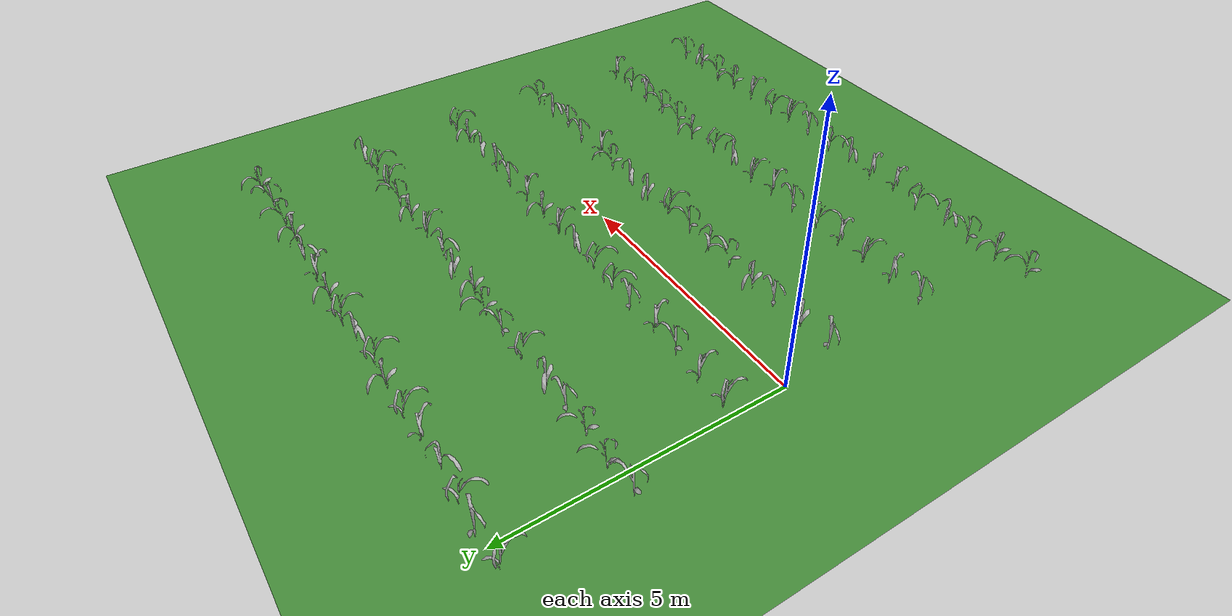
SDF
<sdf version="1.5">
 <world name="custom_maize_farm">
  <include><uri>model://sun</uri></include>
  <model name="ground_plane">
   <static>true</static>
   <link name="link">
    <collision name="collision">
     <geometry><plane><normal>0 0 1</normal><size>100 100</size></plane></geometry>
     <surface><friction><ode><mu>100</mu><mu2>50</mu2></ode></friction></surface>
    </collision>
    <visual name="visual">
     <cast_shadows>false</cast_shadows>
     <geometry><plane><normal>0 0 1</normal><size>100 100</size></plane></geometry>
     <material>
      <script><uri>file://media/materials/scripts/gazebo.material</uri><name>Gazebo/Grass</name></script>
     </material>
    </visual>
   </link>
  </model>
  <include>
   <uri>model://maize_01</uri>
   <name>plant_0_16</name>
   <pose>-0.3807210329979868 -5.040468129049532 0 0 0 1.6050220332890328</pose>
   <static>true</static>
  </include>
  <include>
   <uri>model://maize_01</uri>
   <name>plant_0_17</name>
   <pose>0.22863720472774218 -5.002466565349011 0 0 0 2.002816211383308</pose>
   <static>true</static>
  </include>
  <include>
   <uri>model://maize_01</uri>
   <name>plant_0_18</name>
   <pose>0.8112965860273498 -4.969269623209444 0 0 0 0.9914129743817501</pose>
   <static>true</static>
  </include>
  <include>
   <uri>model://maize_01</uri>
   <name>plant_0_19</name>
   <pose>1.379453956540805 -5.026117816620786 0 0 0 3.451525226140519</pose>
   <static>true</static>
  </include>
  <include>
   <uri>model://maize_01</uri>
   <name>plant_0_20</name>
   <pose>2.012544888877948 -4.96016036159044 0 0 0 4.134638987705728</pose>
   <static>true</static>
  </include>
  <include>
   <uri>model://maize_01</uri>
   <name>plant_0_21</name>
   <pose>2.6311144696377466 -5.024000251760731 0 0 0 5.688588989457242</pose>
   <static>true</static>
  </include>
  <include>
   <uri>model://maize_01</uri>
   <name>plant_0_22</name>
   <pose>3.2062454139691132 -4.985270707361579 0 0 0 5.793933955759263</pose>
   <static>true</static>
  </include>
  <include>
   <uri>model://maize_01</uri>
   <name>plant_0_23</name>
   <pose>3.8278677682271653 -5.03200568809481 0 0 0 3.4247969709899775</pose>
   <static>true</static>
  </include>
  <include>
   <uri>model://maize_01</uri>
   <name>plant_0_24</name>
   <pose>4.360560601441088 -4.990324181086675 0 0 0 4.203772585014435</pose>
   <static>true</static>
  </include>
  <include>
   <uri>model://maize_01</uri>
   <name>plant_0_25</name>
   <pose>4.993777719618213 -5.015093227966888 0 0 0 0.36426645511223094</pose>
   <static>true</static>
  </include>
  <include>
   <uri>model://maize_01</uri>
   <name>plant_0_26</name>
   <pose>5.625098461924278 -5.0457573226895205 0 0 0 5.341821495588718</pose>
   <static>true</static>
  </include>
  <include>
   <uri>model://maize_01</uri>
   <name>plant_0_27</name>
   <pose>6.1509474814185605 -5.015772490096928 0 0 0 4.613874963073128</pose>
   <static>true</static>
  </include>
  <include>
   <uri>model://maize_01</uri>
   <name>plant_0_28</name>
   <pose>6.831984153203716 -5.0244673515223495 0 0 0 5.544730430496938</pose>
   <static>true</static>
  </include>
  <include>
   <uri>model://maize_01</uri>
   <name>plant_0_29</name>
   <pose>7.426825482273021 -5.003801962184658 0 0 0 2.1591175057442924</pose>
   <static>true</static>
  </include>
  <include>
   <uri>model://maize_01</uri>
   <name>plant_0_30</name>
   <pose>8.025533983371579 -5.002219624890983 0 0 0 1.7721690967412767</pose>
   <static>true</static>
  </include>
  <include>
   <uri>model://maize_01</uri>
   <name>plant_0_31</name>
   <pose>8.615340285997116 -5.018513672031454 0 0 0 2.946608232768496</pose>
   <static>true</static>
  </include>
  <include>
   <uri>model://maize_01</uri>
   <name>plant_0_32</name>
   <pose>9.153496499272617 -4.957853396510059 0 0 0 1.093533885097643</pose>
   <static>true</static>
  </include>
  <include>
   <uri>model://maize_01</uri>
   <name>plant_1_17</name>
   <pose>0.15195774970885198 -3.0190896819397075 0 0 0 0.33163816256491185</pose>
   <static>true</static>
  </include>
  <include>
   <uri>model://maize_01</uri>
   <name>plant_1_18</name>
   <pose>0.7985026003931133 -3.0159972860998496 0 0 0 5.8239935801733225</pose>
   <static>true</static>
  </include>
  <include>
   <uri>model://maize_01</uri>
   <name>plant_1_19</name>
   <pose>1.4140449431861482 -3.012800346518933 0 0 0 5.221110872994056</pose>
   <static>true</static>
  </include>
  <include>
   <uri>model://maize_01</uri>
   <name>plant_1_20</name>
   <pose>2.015800541086362 -3.003036926029537 0 0 0 5.729273158285351</pose>
   <static>true</static>
  </include>
  <include>
   <uri>model://maize_01</uri>
   <name>plant_1_21</name>
   <pose>2.598098904706131 -3.031794616126838 0 0 0 4.596599625698544</pose>
   <static>true</static>
  </include>
  <include>
   <uri>model://maize_01</uri>
   <name>plant_1_22</name>
   <pose>3.2195940615092074 -3.004338214394407 0 0 0 0.6216855896790175</pose>
   <static>true</static>
  </include>
  <include>
   <uri>model://maize_01</uri>
   <name>plant_1_23</name>
   <pose>3.846727308220053 -3.036226002201447 0 0 0 5.67973792274115</pose>
   <static>true</static>
  </include>
  <include>
   <uri>model://maize_01</uri>
   <name>plant_1_24</name>
   <pose>4.365907176793807 -2.9702183745427555 0 0 0 5.424983799610597</pose>
   <static>true</static>
  </include>
  <include>
   <uri>model://maize_01</uri>
   <name>plant_1_25</name>
   <pose>5.038875247724795 -3.0254791573867634 0 0 0 3.4281754690334316</pose>
   <static>true</static>
  </include>
  <include>
   <uri>model://maize_01</uri>
   <name>plant_1_26</name>
   <pose>5.601747424871233 -3.0208780835070064 0 0 0 4.75074890416351</pose>
   <static>true</static>
  </include>
  <include>
   <uri>model://maize_01</uri>
   <name>plant_1_27</name>
   <pose>6.247144251126261 -2.950004272027432 0 0 0 2.483801223426759</pose>
   <static>true</static>
  </include>
  <include>
   <uri>model://maize_01</uri>
   <name>plant_1_28</name>
   <pose>6.847806179917104 -3.0252819450289774 0 0 0 1.4884859577472884</pose>
   <static>true</static>
  </include>
  <include>
   <uri>model://maize_01</uri>
   <name>plant_1_29</name>
   <pose>7.421969155205991 -3.0321432132261807 0 0 0 1.353808586396541</pose>
   <static>true</static>
  </include>
  <include>
   <uri>model://maize_01</uri>
   <name>plant_1_30</name>
   <pose>7.9802695828701085 -3.0057973710442973 0 0 0 0.42230622421968106</pose>
   <static>true</static>
  </include>
  <include>
   <uri>model://maize_01</uri>
   <name>plant_1_31</name>
   <pose>8.597199050189552 -3.0326432226909033 0 0 0 4.542344137125889</pose>
   <static>true</static>
  </include>
  <include>
   <uri>model://maize_01</uri>
   <name>plant_1_32</name>
   <pose>9.240459124989268 -3.034860755985316 0 0 0 6.00260073772567</pose>
   <static>true</static>
  </include>
  <include>
   <uri>model://maize_01</uri>
   <name>plant_2_17</name>
   <pose>0.1849664510684475 -1.031178929963481 0 0 0 0.053942472959140245</pose>
   <static>true</static>
  </include>
  <include>
   <uri>model://maize_01</uri>
   <name>plant_2_18</name>
   <pose>0.8149893729061888 -1.0115151665532012 0 0 0 2.9573039768655978</pose>
   <static>true</static>
  </include>
  <include>
   <uri>model://maize_01</uri>
   <name>plant_2_19</name>
   <pose>1.3983443964206697 -0.957956444615778 0 0 0 0.48917570818708284</pose>
   <static>true</static>
  </include>
  <include>
   <uri>model://maize_01</uri>
   <name>plant_2_20</name>
   <pose>1.964523307329796 -0.9755689853922515 0 0 0 2.791822471217703</pose>
   <static>true</static>
  </include>
  <include>
   <uri>model://maize_01</uri>
   <name>plant_2_21</name>
   <pose>2.6367048157061204 -1.0317859771306983 0 0 0 1.700649260944747</pose>
   <static>true</static>
  </include>
  <include>
   <uri>model://maize_01</uri>
   <name>plant_2_22</name>
   <pose>3.153872454438152 -0.9818059803973902 0 0 0 4.0769502614437405</pose>
   <static>true</static>
  </include>
  <include>
   <uri>model://maize_01</uri>
   <name>plant_2_23</name>
   <pose>3.7716978465146553 -1.0344922221572097 0 0 0 1.2584739543456205</pose>
   <static>true</static>
  </include>
  <include>
   <uri>model://maize_01</uri>
   <name>plant_2_24</name>
   <pose>4.426571653942076 -1.034749557837699 0 0 0 5.210750569071346</pose>
   <static>true</static>
  </include>
  <include>
   <uri>model://maize_01</uri>
   <name>plant_2_25</name>
   <pose>5.009452732221775 -0.9678628610286778 0 0 0 3.0864938967561044</pose>
   <static>true</static>
  </include>
  <include>
   <uri>model://maize_01</uri>
   <name>plant_2_26</name>
   <pose>5.590928371139384 -0.9503959918165125 0 0 0 3.466531970851903</pose>
   <static>true</static>
  </include>
  <include>
   <uri>model://maize_01</uri>
   <name>plant_2_27</name>
   <pose>6.232909715107289 -0.9740446980126671 0 0 0 2.0740715283654376</pose>
   <static>true</static>
  </include>
  <include>
   <uri>model://maize_01</uri>
   <name>plant_2_28</name>
   <pose>6.7594770398476705 -1.0340767600278484 0 0 0 5.924876000782191</pose>
   <static>true</static>
  </include>
  <include>
   <uri>model://maize_01</uri>
   <name>plant_2_29</name>
   <pose>7.355784798895397 -0.9545927583462469 0 0 0 0.8227892722332637</pose>
   <static>true</static>
  </include>
  <include>
   <uri>model://maize_01</uri>
   <name>plant_2_30</name>
   <pose>7.984049591277876 -1.0237455963599882 0 0 0 0.752594645395938</pose>
   <static>true</static>
  </include>
  <include>
   <uri>model://maize_01</uri>
   <name>plant_2_31</name>
   <pose>8.58338125164561 -0.9808965910568755 0 0 0 3.9214347064395487</pose>
   <static>true</static>
  </include>
  <include>
   <uri>model://maize_01</uri>
   <name>plant_2_32</name>
   <pose>9.244532902688187 -1.0231596456836451 0 0 0 1.9704814674195985</pose>
   <static>true</static>
  </include>
  <include>
   <uri>model://maize_01</uri>
   <name>plant_3_17</name>
   <pose>0.1807070942993483 1.0394250407400305 0 0 0 5.437907389112769</pose>
   <static>true</static>
  </include>
  <include>
   <uri>model://maize_01</uri>
   <name>plant_3_18</name>
   <pose>0.7799661124901774 1.049568299713038 0 0 0 5.678081924102522</pose>
   <static>true</static>
  </include>
  <include>
   <uri>model://maize_01</uri>
   <name>plant_3_19</name>
   <pose>1.4334839253225058 0.9807348067746028 0 0 0 0.9756302443250231</pose>
   <static>true</static>
  </include>
  <include>
   <uri>model://maize_01</uri>
   <name>plant_3_20</name>
   <pose>2.02031125206823 0.98046166279554 0 0 0 5.925526190970912</pose>
   <static>true</static>
  </include>
  <include>
   <uri>model://maize_01</uri>
   <name>plant_3_21</name>
   <pose>2.62420491925001 1.038539566424549 0 0 0 0.5233238302777903</pose>
   <static>true</static>
  </include>
  <include>
   <uri>model://maize_01</uri>
   <name>plant_3_22</name>
   <pose>3.222614321010188 0.9910757280204361 0 0 0 4.715801580698354</pose>
   <static>true</static>
  </include>
  <include>
   <uri>model://maize_01</uri>
   <name>plant_3_23</name>
   <pose>3.8479503275318514 0.9542480706566208 0 0 0 5.044779015403255</pose>
   <static>true</static>
  </include>
  <include>
   <uri>model://maize_01</uri>
   <name>plant_3_24</name>
   <pose>4.447674562539452 0.9859775165504135 0 0 0 3.6170196361798452</pose>
   <static>true</static>
  </include>
  <include>
   <uri>model://maize_01</uri>
   <name>plant_3_25</name>
   <pose>5.016478171824408 0.9608713852056658 0 0 0 5.735711779452056</pose>
   <static>true</static>
  </include>
  <include>
   <uri>model://maize_01</uri>
   <name>plant_3_26</name>
   <pose>5.593877507812084 0.9568753035669069 0 0 0 2.6545808441190153</pose>
   <static>true</static>
  </include>
  <include>
   <uri>model://maize_01</uri>
   <name>plant_3_27</name>
   <pose>6.229796899750297 0.9558916914664976 0 0 0 5.981225879359304</pose>
   <static>true</static>
  </include>
  <include>
   <uri>model://maize_01</uri>
   <name>plant_3_28</name>
   <pose>6.795166616879169 1.005246533183886 0 0 0 0.7605699291638721</pose>
   <static>true</static>
  </include>
  <include>
   <uri>model://maize_01</uri>
   <name>plant_3_29</name>
   <pose>7.439501580302625 0.955808552186791 0 0 0 0.4303486373982686</pose>
   <static>true</static>
  </include>
  <include>
   <uri>model://maize_01</uri>
   <name>plant_3_30</name>
   <pose>8.011738331468097 0.9924493863561812 0 0 0 3.580100929926115</pose>
   <static>true</static>
  </include>
  <include>
   <uri>model://maize_01</uri>
   <name>plant_3_31</name>
   <pose>8.617447328762227 0.9676689550523854 0 0 0 2.8781491337583263</pose>
   <static>true</static>
  </include>
  <include>
   <uri>model://maize_01</uri>
   <name>plant_3_32</name>
   <pose>9.197404539707355 0.9798488536321476 0 0 0 5.235712421474715</pose>
   <static>true</static>
  </include>
  <include>
   <uri>model://maize_01</uri>
   <name>plant_4_16</name>
   <pose>-0.37213898102765686 2.9824889924493965 0 0 0 1.0495797893353536</pose>
   <static>true</static>
  </include>
  <include>
   <uri>model://maize_01</uri>
   <name>plant_4_17</name>
   <pose>0.19588054325800633 3.049038579460263 0 0 0 1.7780126541188435</pose>
   <static>true</static>
  </include>
  <include>
   <uri>model://maize_01</uri>
   <name>plant_4_18</name>
   <pose>0.836689158385742 2.9920424329903867 0 0 0 1.8510063669945456</pose>
   <static>true</static>
  </include>
  <include>
   <uri>model://maize_01</uri>
   <name>plant_4_19</name>
   <pose>1.3556705682671037 3.0041277158862303 0 0 0 0.7348622919383039</pose>
   <static>true</static>
  </include>
  <include>
   <uri>model://maize_01</uri>
   <name>plant_4_20</name>
   <pose>1.9578028362154318 2.990666483211793 0 0 0 3.3676570238102403</pose>
   <static>true</static>
  </include>
  <include>
   <uri>model://maize_01</uri>
   <name>plant_4_21</name>
   <pose>2.6414205276259675 3.0362474336667917 0 0 0 5.449972434370987</pose>
   <static>true</static>
  </include>
  <include>
   <uri>model://maize_01</uri>
   <name>plant_4_22</name>
   <pose>3.234619257429296 3.0413972226347994 0 0 0 1.2794991873272497</pose>
   <static>true</static>
  </include>
  <include>
   <uri>model://maize_01</uri>
   <name>plant_4_23</name>
   <pose>3.8465973645169274 3.0383148464547087 0 0 0 2.280448353243028</pose>
   <static>true</static>
  </include>
  <include>
   <uri>model://maize_01</uri>
   <name>plant_4_24</name>
   <pose>4.384803474266734 2.965226421733656 0 0 0 2.9595580856852584</pose>
   <static>true</static>
  </include>
  <include>
   <uri>model://maize_01</uri>
   <name>plant_4_25</name>
   <pose>5.00688563692541 3.0368622665555147 0 0 0 3.4336616558038027</pose>
   <static>true</static>
  </include>
  <include>
   <uri>model://maize_01</uri>
   <name>plant_4_26</name>
   <pose>5.62639540774239 2.9632893051040154 0 0 0 4.286693390253637</pose>
   <static>true</static>
  </include>
  <include>
   <uri>model://maize_01</uri>
   <name>plant_4_27</name>
   <pose>6.230153934313325 2.9830375655151613 0 0 0 5.867231290591025</pose>
   <static>true</static>
  </include>
  <include>
   <uri>model://maize_01</uri>
   <name>plant_4_28</name>
   <pose>6.847348095546556 3.012924184832792 0 0 0 3.0883838093805527</pose>
   <static>true</static>
  </include>
  <include>
   <uri>model://maize_01</uri>
   <name>plant_4_29</name>
   <pose>7.424921659701291 3.004725600238719 0 0 0 1.6833019741221442</pose>
   <static>true</static>
  </include>
  <include>
   <uri>model://maize_01</uri>
   <name>plant_4_30</name>
   <pose>7.992850954582799 2.987227075973706 0 0 0 5.7424714388312506</pose>
   <static>true</static>
  </include>
  <include>
   <uri>model://maize_01</uri>
   <name>plant_4_31</name>
   <pose>8.617055905488911 2.961564074633016 0 0 0 5.433743944207864</pose>
   <static>true</static>
  </include>
  <include>
   <uri>model://maize_01</uri>
   <name>plant_4_32</name>
   <pose>9.160119233250686 3.0215928653093833 0 0 0 3.742091151888935</pose>
   <static>true</static>
  </include>
  <include>
   <uri>model://maize_01</uri>
   <name>plant_5_16</name>
   <pose>-0.359797555182456 4.982211799355183 0 0 0 5.593229539394239</pose>
   <static>true</static>
  </include>
  <include>
   <uri>model://maize_01</uri>
   <name>plant_5_17</name>
   <pose>0.22160154374514585 5.027806355458782 0 0 0 0.511800312511538</pose>
   <static>true</static>
  </include>
  <include>
   <uri>model://maize_01</uri>
   <name>plant_5_18</name>
   <pose>0.7836364356307579 4.993062795156749 0 0 0 5.108067963892619</pose>
   <static>true</static>
  </include>
  <include>
   <uri>model://maize_01</uri>
   <name>plant_5_19</name>
   <pose>1.4153983356341686 4.955470837775298 0 0 0 4.265924311523456</pose>
   <static>true</static>
  </include>
  <include>
   <uri>model://maize_01</uri>
   <name>plant_5_20</name>
   <pose>2.0245390342143934 4.981103714132037 0 0 0 6.231400257503816</pose>
   <static>true</static>
  </include>
  <include>
   <uri>model://maize_01</uri>
   <name>plant_5_21</name>
   <pose>2.5511771816200945 5.013569048930223 0 0 0 5.513994925756959</pose>
   <static>true</static>
  </include>
  <include>
   <uri>model://maize_01</uri>
   <name>plant_5_22</name>
   <pose>3.234904284650983 4.993363236715666 0 0 0 2.948181116867032</pose>
   <static>true</static>
  </include>
  <include>
   <uri>model://maize_01</uri>
   <name>plant_5_23</name>
   <pose>3.7917300203079196 4.956660202086851 0 0 0 5.356950863159747</pose>
   <static>true</static>
  </include>
  <include>
   <uri>model://maize_01</uri>
   <name>plant_5_24</name>
   <pose>4.443939592421667 5.004246099646917 0 0 0 3.9758738735071644</pose>
   <static>true</static>
  </include>
  <include>
   <uri>model://maize_01</uri>
   <name>plant_5_25</name>
   <pose>4.980167657360277 5.04585571099944 0 0 0 5.5564964671640285</pose>
   <static>true</static>
  </include>
  <include>
   <uri>model://maize_01</uri>
   <name>plant_5_26</name>
   <pose>5.5647303680211095 5.020864324145694 0 0 0 3.0352249597413588</pose>
   <static>true</static>
  </include>
  <include>
   <uri>model://maize_01</uri>
   <name>plant_5_27</name>
   <pose>6.160537004126025 5.038648604177519 0 0 0 6.238317110199119</pose>
   <static>true</static>
  </include>
  <include>
   <uri>model://maize_01</uri>
   <name>plant_5_28</name>
   <pose>6.78324136684211 5.046463639652774 0 0 0 4.375395265140007</pose>
   <static>true</static>
  </include>
  <include>
   <uri>model://maize_01</uri>
   <name>plant_5_29</name>
   <pose>7.4180058451544735 4.97975155395712 0 0 0 2.956418934207705</pose>
   <static>true</static>
  </include>
  <include>
   <uri>model://maize_01</uri>
   <name>plant_5_30</name>
   <pose>8.002170997317682 4.995429774446827 0 0 0 2.3749926734728937</pose>
   <static>true</static>
  </include>
  <include>
   <uri>model://maize_01</uri>
   <name>plant_5_31</name>
   <pose>8.605426370267972 4.99876846813472 0 0 0 1.5634815469904724</pose>
   <static>true</static>
  </include>
  <include>
   <uri>model://maize_01</uri>
   <name>plant_5_32</name>
   <pose>9.242659548035144 5.032427419652538 0 0 0 2.716633520946298</pose>
   <static>true</static>
  </include>
 </world>
</sdf>
